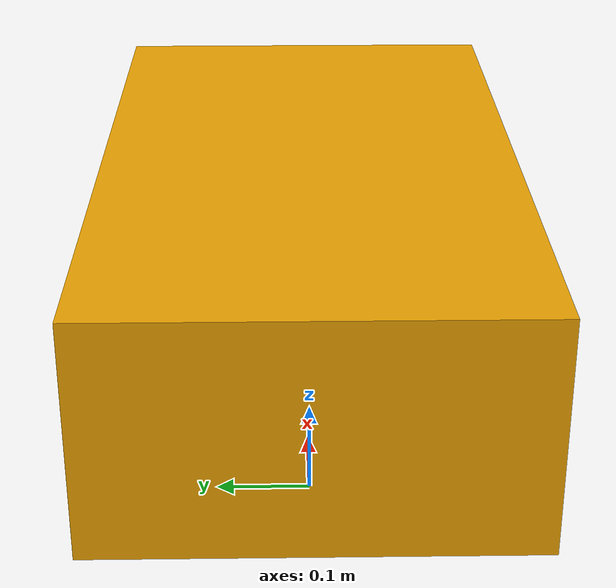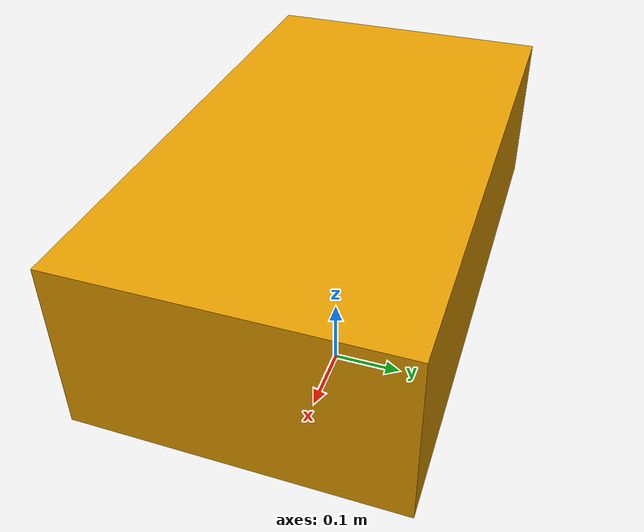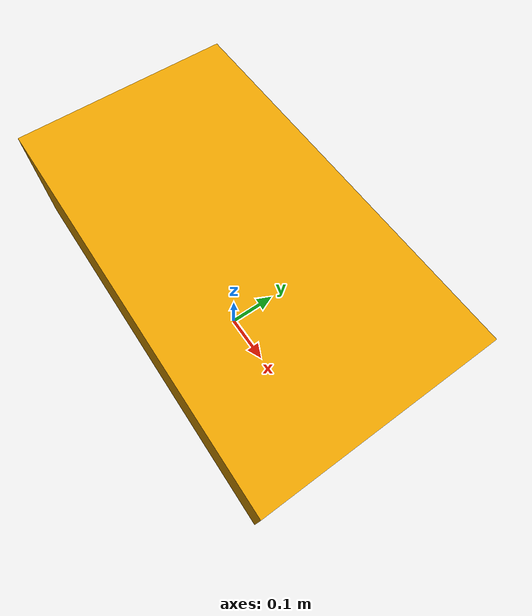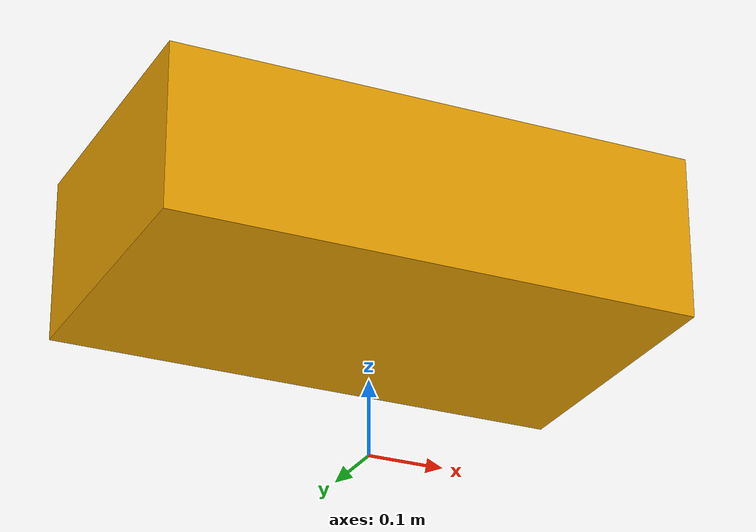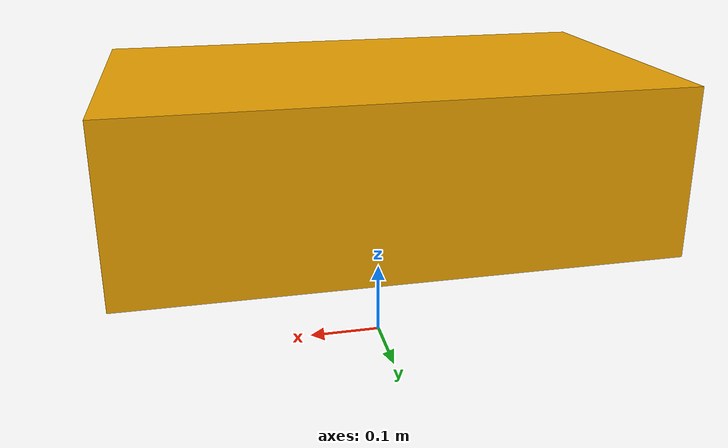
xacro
<?xml version='1.0'?>
<robot xmlns:xacro='http://www.ros.org/wiki/xacro' name='garden_tracked'>
  <xacro:property name='variant' value='tracked'/>
  <xacro:property name='mass_kg' value='65.0'/>
  <xacro:property name='track_gauge' value='0.52'/>
  <xacro:property name='wheel_radius' value='0.12'/>
  <xacro:property name='body_clearance' value='0.17'/>
  <link name='base_link'>
    <visual name='TRK-BASE-001_visual'><origin xyz='0 0 0.28' rpy='0 0 0'/><geometry><box size='0.7 0.4 0.22'/></geometry></visual>
    <collision name='TRK-BASE-001_collision'><origin xyz='0 0 0.27' rpy='0 0 0'/><geometry><box size='0.68 0.37 0.2'/></geometry></collision>
    <inertial><origin xyz='0 0 0.3' rpy='0 0 0'/><mass value='60.6'/><inertia ixx='1.0524200000000001' ixy='0' ixz='0' iyy='2.7189200000000002' iyz='0' izz='3.2824999999999993'/></inertial>
  </link>
  <link name='left_wheel'><collision name='left_wheel_collision'><geometry><cylinder radius='0.12' length='0.09'/></geometry></collision></link>
  <joint name='left_joint' type='continuous'><parent link='base_link'/><child link='left_wheel'/><origin xyz='0.0 0.26 0.12' rpy='1.57079632679 0 0'/><axis xyz='0 0 -1'/></joint>
  <link name='right_wheel'><collision name='right_wheel_collision'><geometry><cylinder radius='0.12' length='0.09'/></geometry></collision></link>
  <joint name='right_joint' type='continuous'><parent link='base_link'/><child link='right_wheel'/><origin xyz='0.0 -0.26 0.12' rpy='1.57079632679 0 0'/><axis xyz='0 0 -1'/></joint>
  <!-- Future CAD references: TRK-BASE-001, TRK-BELT-VIS-001, TRK-SUPPORT-SPHERE-001. Visual and collision geometry remain separate. -->
</robot>
